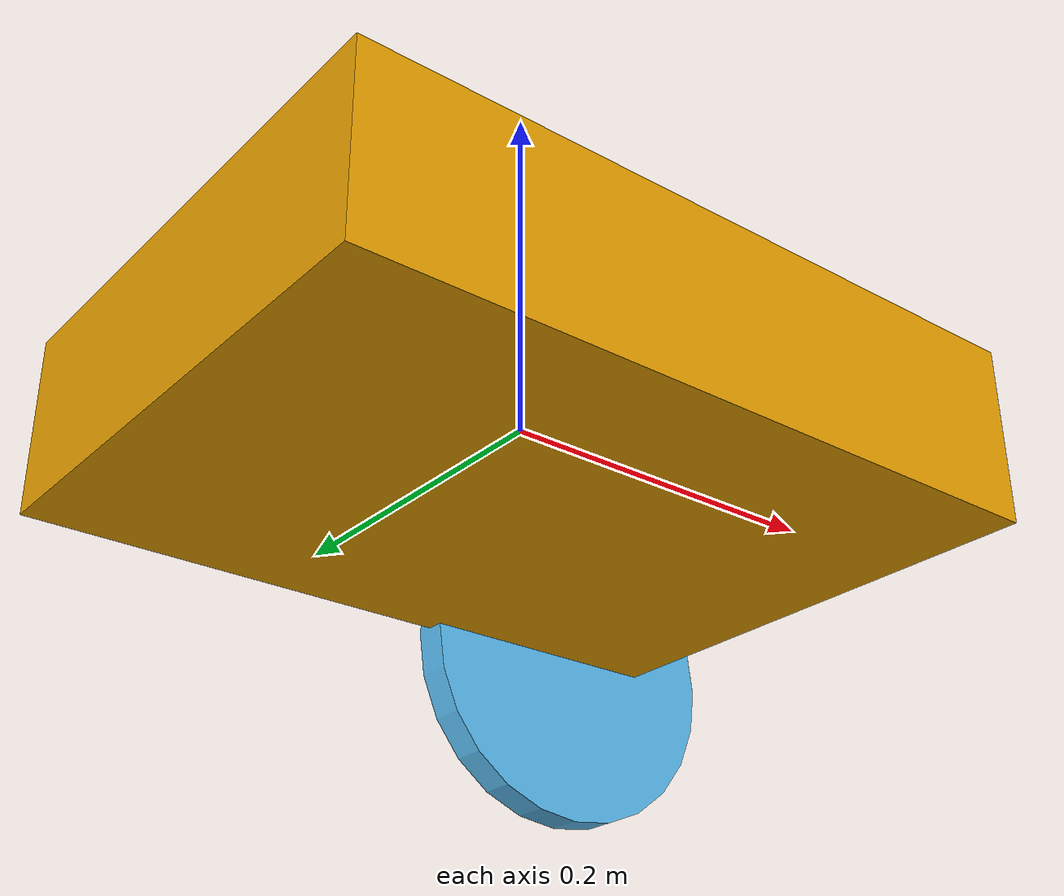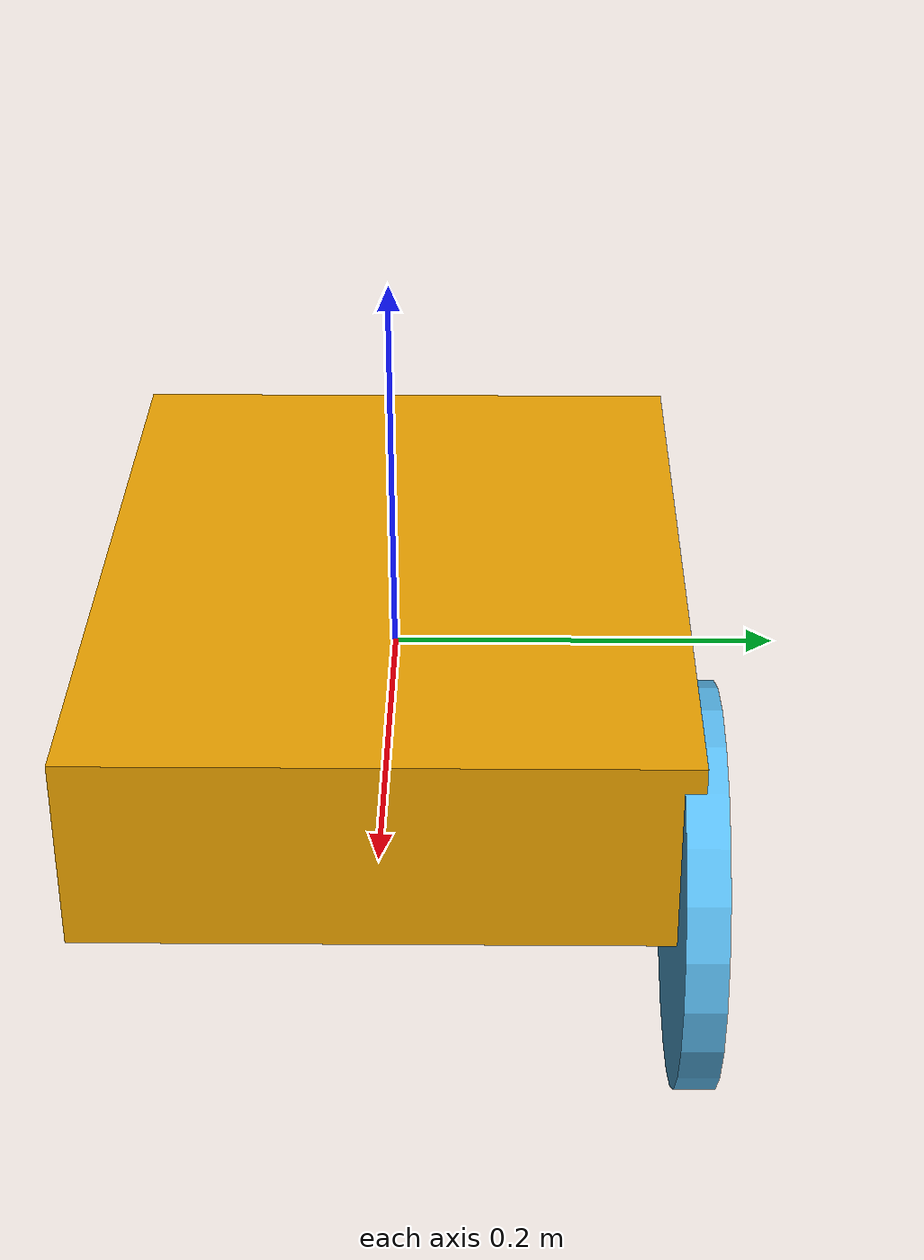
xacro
<?xml version="1.0"?>
<robot name="my_robot" xmlns:xacro="http://www.ros.org/wiki/xacro">

  <!-- Wheel properties -->
  <xacro:property name="wheel_radius" value="0.10"/>
  <xacro:property name="wheel_width" value="0.02"/>
  <!-- Base link -->
  <link name="base_link">
    <visual>
      <geometry>
        <box size="0.4 0.3 0.1"/>
      </geometry>
      <origin xyz="0 0 0" rpy="0 0 0"/>
    </visual>
    <collision>
      <geometry>
        <box size="0.4 0.3 0.1"/>
      </geometry>
      <origin xyz="0 0 0" rpy="0 0 0"/>
    </collision>
    <inertial>
      <mass value="5"/>
      <inertia ixx="0.1" iyy="0.1" izz="0.1" ixy="0" ixz="0" iyz="0"/>
      <origin xyz="0 0 0" rpy="0 0 0"/>
    </inertial>
  </link>

  <!-- Left front wheel -->
  <link name="left_front_wheel">
    <visual>
      <geometry>
        <cylinder radius="${wheel_radius}" length="${wheel_width}"/>
      </geometry>
      <origin xyz="0 0 0" rpy="1.5708 0 0"/>
    </visual>
    <collision>
      <geometry>
        <cylinder radius="${wheel_radius}" length="${wheel_width}"/>
      </geometry>
      <origin xyz="0 0 0" rpy="1.5708 0 0"/>
    </collision>
    <inertial>
      <mass value="0.3"/>
      <inertia ixx="0.0005" iyy="0.0005" izz="0.0005" ixy="0" ixz="0" iyz="0"/>
      <origin xyz="0 0 0" rpy="0 0 0"/>
    </inertial>
  </link>

  <!-- Joint connecting wheel to base -->
  <joint name="left_front_wheel_joint" type="continuous">
    <parent link="base_link"/>
    <child link="left_front_wheel"/>
    <origin xyz="0.15 0.15 -0.05" rpy="0 0 0"/>
    <axis xyz="0 1 0"/>
  </joint>
</robot>
